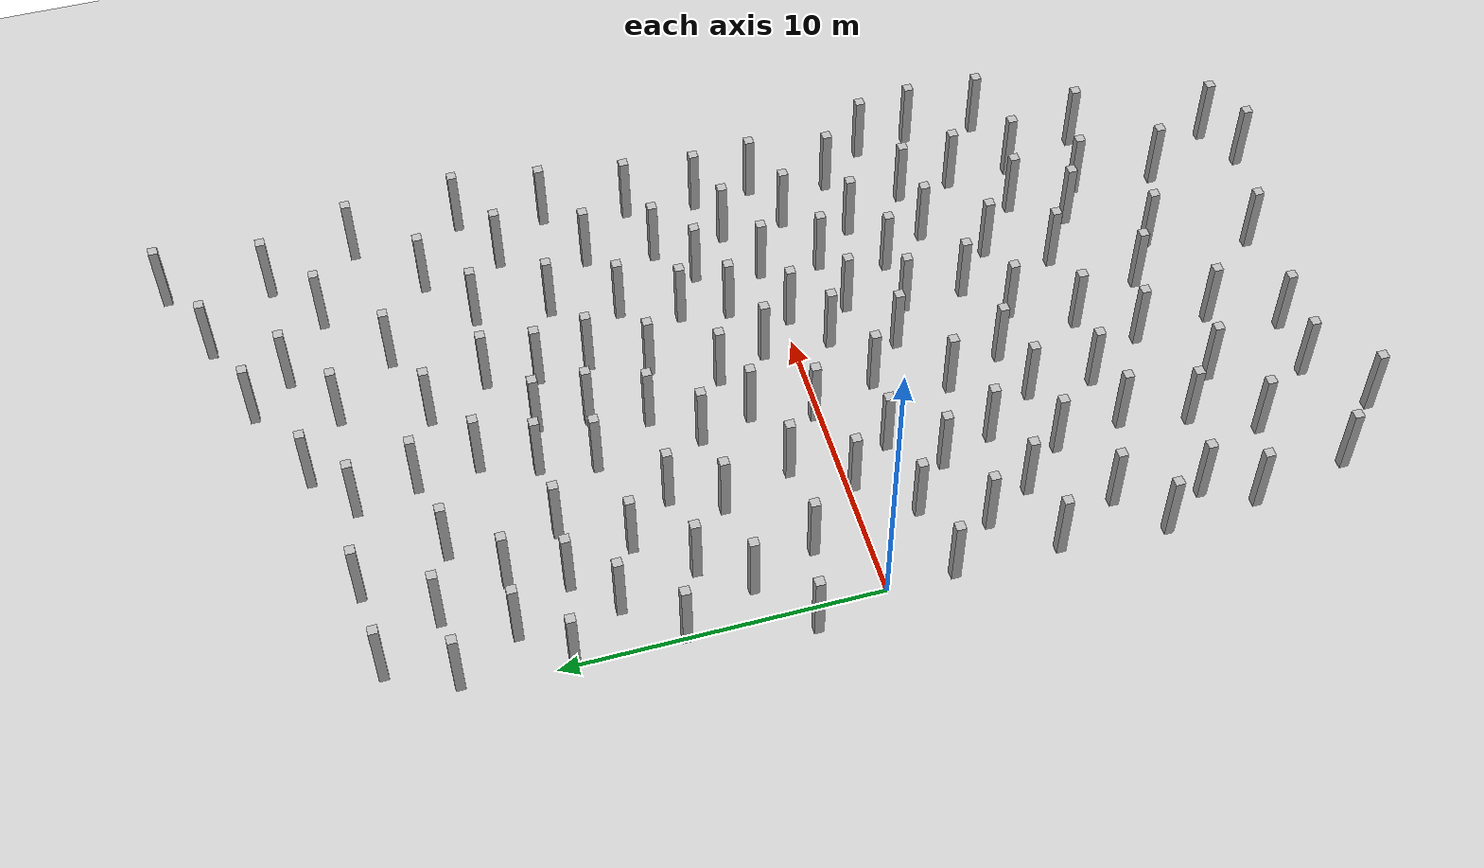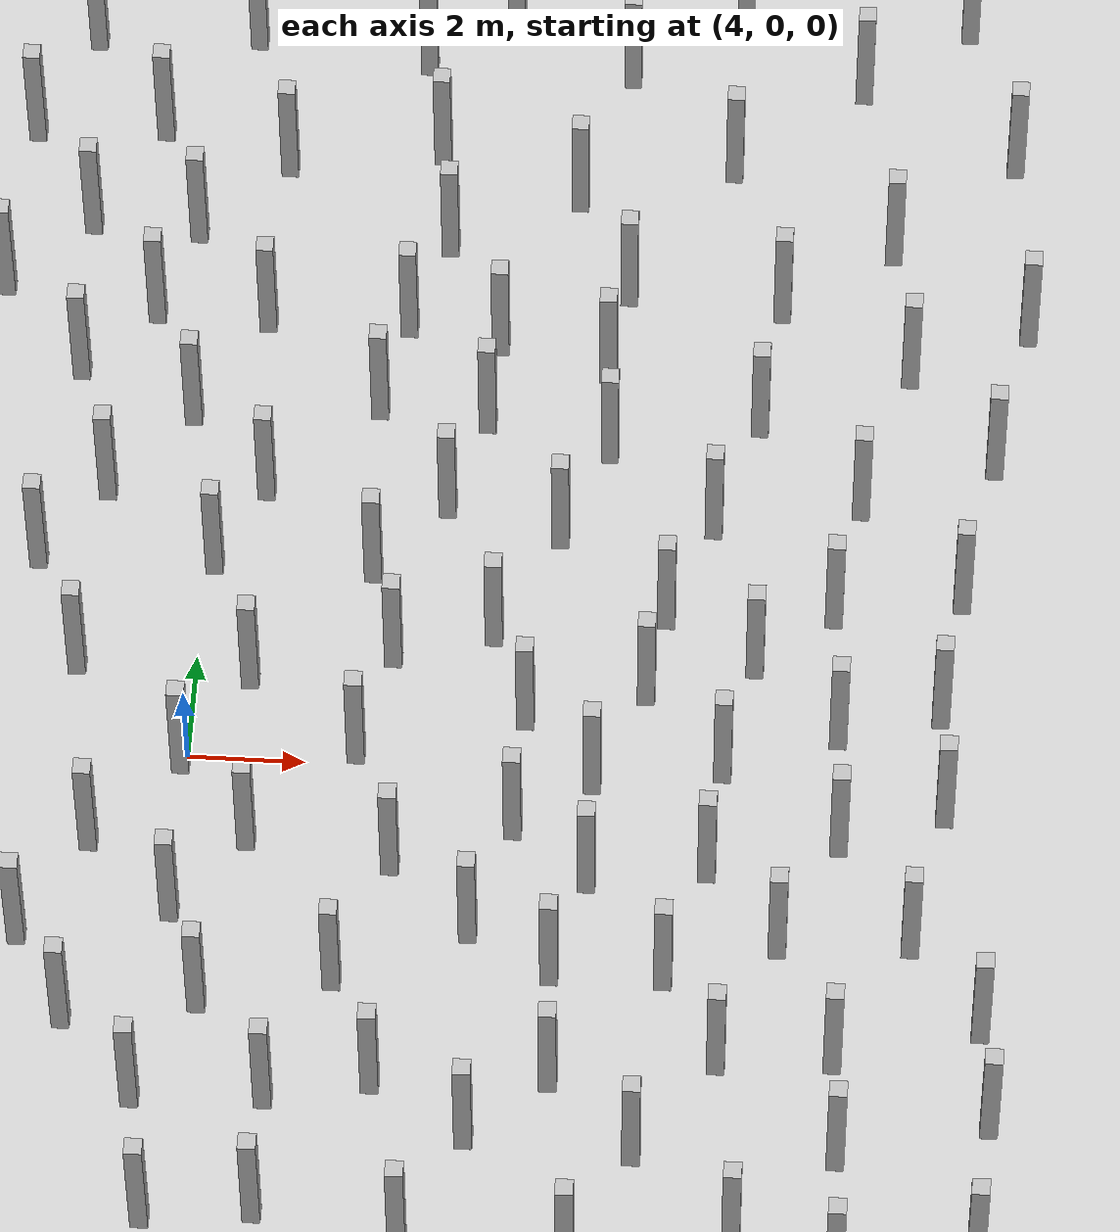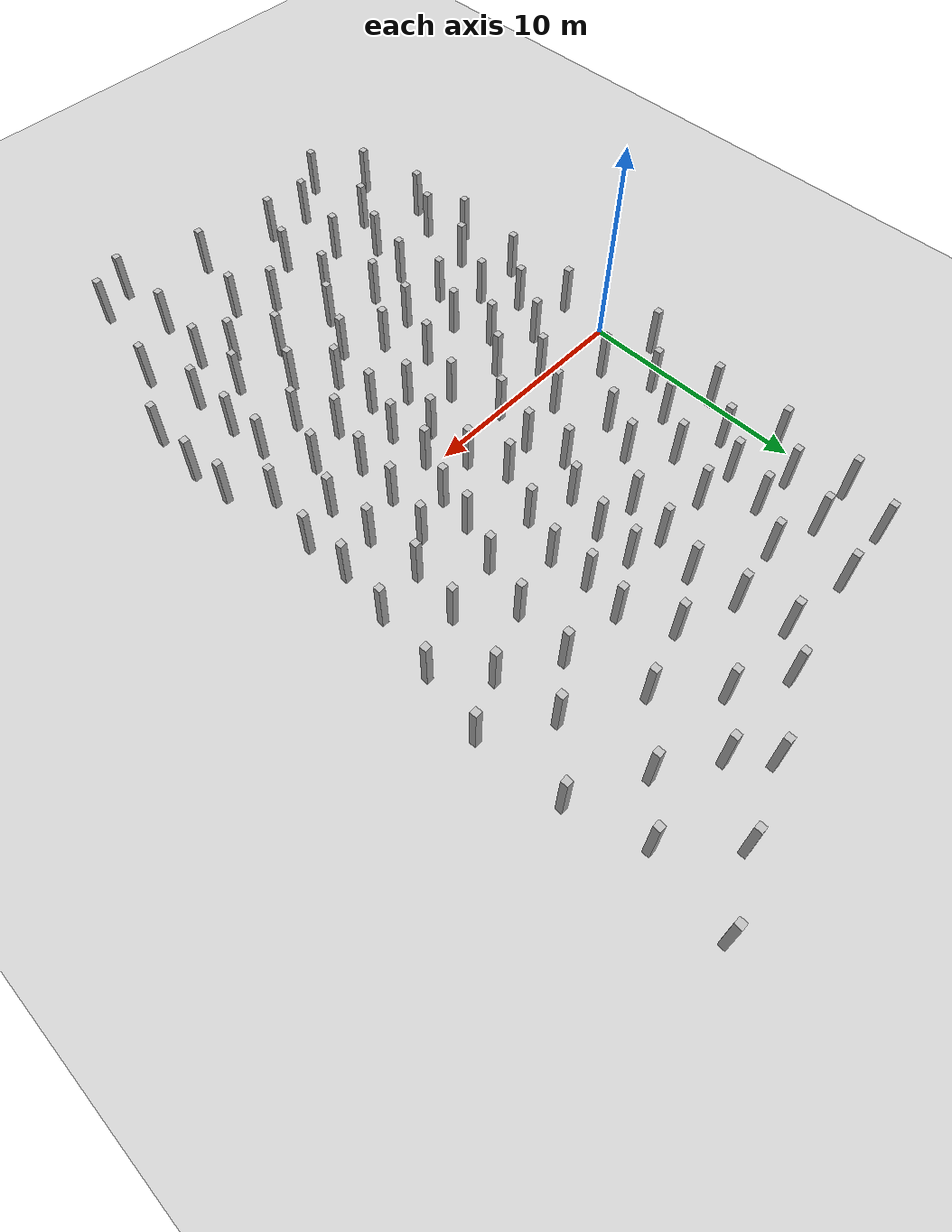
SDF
<sdf version="1.7">
 <world name="random_boxes_100x40_600">
  <model name="ground_plane">
   <static>1</static>
   <link name="link">
    <collision name="collision">
     <geometry><plane><normal>0 0 1</normal><size>100 100</size></plane></geometry>
     <surface><friction><ode><mu>100</mu><mu2>50</mu2></ode></friction></surface>
    </collision>
    <visual name="visual">
     <cast_shadows>0</cast_shadows>
     <geometry><plane><normal>0 0 1</normal><size>100 100</size></plane></geometry>
     <material>
      <script><uri>file://media/materials/scripts/gazebo.material</uri><name>Gazebo/Grey</name></script>
     </material>
    </visual>
   </link>
  </model>
  <model name="box_0">
   <static>1</static>
   <pose>17.4836 6.59513 1.25 0 -0 0</pose>
   <link name="link">
    <visual name="visual"><geometry><box><size>0.3 0.3 2.5</size></box></geometry></visual>
    <collision name="collision"><geometry><box><size>0.3 0.3 2.5</size></box></geometry></collision>
   </link>
  </model>
  <model name="box_2">
   <static>1</static>
   <pose>15.2072 5.61376 1.25 0 -0 0</pose>
   <link name="link">
    <visual name="visual"><geometry><box><size>0.3 0.3 2.5</size></box></geometry></visual>
    <collision name="collision"><geometry><box><size>0.3 0.3 2.5</size></box></geometry></collision>
   </link>
  </model>
  <model name="box_6">
   <static>1</static>
   <pose>15.948 8.4165 1.25 0 -0 0</pose>
   <link name="link">
    <visual name="visual"><geometry><box><size>0.3 0.3 2.5</size></box></geometry></visual>
    <collision name="collision"><geometry><box><size>0.3 0.3 2.5</size></box></geometry></collision>
   </link>
  </model>
  <model name="box_9">
   <static>1</static>
   <pose>17.9796 9.42606 1.25 0 -0 0</pose>
   <link name="link">
    <visual name="visual"><geometry><box><size>0.3 0.3 2.5</size></box></geometry></visual>
    <collision name="collision"><geometry><box><size>0.3 0.3 2.5</size></box></geometry></collision>
   </link>
  </model>
  <model name="box_10">
   <static>1</static>
   <pose>17.0221 3.80163 1.25 0 -0 0</pose>
   <link name="link">
    <visual name="visual"><geometry><box><size>0.3 0.3 2.5</size></box></geometry></visual>
    <collision name="collision"><geometry><box><size>0.3 0.3 2.5</size></box></geometry></collision>
   </link>
  </model>
  <model name="box_13">
   <static>1</static>
   <pose>13.3817 7.23787 1.25 0 -0 0</pose>
   <link name="link">
    <visual name="visual"><geometry><box><size>0.3 0.3 2.5</size></box></geometry></visual>
    <collision name="collision"><geometry><box><size>0.3 0.3 2.5</size></box></geometry></collision>
   </link>
  </model>
  <model name="box_15">
   <static>1</static>
   <pose>14.8376 3.37622 1.25 0 -0 0</pose>
   <link name="link">
    <visual name="visual"><geometry><box><size>0.3 0.3 2.5</size></box></geometry></visual>
    <collision name="collision"><geometry><box><size>0.3 0.3 2.5</size></box></geometry></collision>
   </link>
  </model>
  <model name="box_16">
   <static>1</static>
   <pose>15.5586 11.012 1.25 0 -0 0</pose>
   <link name="link">
    <visual name="visual"><geometry><box><size>0.3 0.3 2.5</size></box></geometry></visual>
    <collision name="collision"><geometry><box><size>0.3 0.3 2.5</size></box></geometry></collision>
   </link>
  </model>
  <model name="box_23">
   <static>1</static>
   <pose>16.73 15.923 1.25 0 -0 0</pose>
   <link name="link">
    <visual name="visual"><geometry><box><size>0.3 0.3 2.5</size></box></geometry></visual>
    <collision name="collision"><geometry><box><size>0.3 0.3 2.5</size></box></geometry></collision>
   </link>
  </model>
  <model name="box_25">
   <static>1</static>
   <pose>11.9703 3.1948 1.25 0 -0 0</pose>
   <link name="link">
    <visual name="visual"><geometry><box><size>0.3 0.3 2.5</size></box></geometry></visual>
    <collision name="collision"><geometry><box><size>0.3 0.3 2.5</size></box></geometry></collision>
   </link>
  </model>
  <model name="box_26">
   <static>1</static>
   <pose>13.6562 9.66763 1.25 0 -0 0</pose>
   <link name="link">
    <visual name="visual"><geometry><box><size>0.3 0.3 2.5</size></box></geometry></visual>
    <collision name="collision"><geometry><box><size>0.3 0.3 2.5</size></box></geometry></collision>
   </link>
  </model>
  <model name="box_27">
   <static>1</static>
   <pose>17.293 19.288 1.25 0 -0 0</pose>
   <link name="link">
    <visual name="visual"><geometry><box><size>0.3 0.3 2.5</size></box></geometry></visual>
    <collision name="collision"><geometry><box><size>0.3 0.3 2.5</size></box></geometry></collision>
   </link>
  </model>
  <model name="box_28">
   <static>1</static>
   <pose>9.04471 2.67448 1.25 0 -0 0</pose>
   <link name="link">
    <visual name="visual"><geometry><box><size>0.3 0.3 2.5</size></box></geometry></visual>
    <collision name="collision"><geometry><box><size>0.3 0.3 2.5</size></box></geometry></collision>
   </link>
  </model>
  <model name="box_29">
   <static>1</static>
   <pose>14.891 14.481 1.25 0 -0 0</pose>
   <link name="link">
    <visual name="visual"><geometry><box><size>0.3 0.3 2.5</size></box></geometry></visual>
    <collision name="collision"><geometry><box><size>0.3 0.3 2.5</size></box></geometry></collision>
   </link>
  </model>
  <model name="box_30">
   <static>1</static>
   <pose>12.6881 5.0803 1.25 0 -0 0</pose>
   <link name="link">
    <visual name="visual"><geometry><box><size>0.3 0.3 2.5</size></box></geometry></visual>
    <collision name="collision"><geometry><box><size>0.3 0.3 2.5</size></box></geometry></collision>
   </link>
  </model>
  <model name="box_33">
   <static>1</static>
   <pose>9.686 1.023 1.25 0 -0 0</pose>
   <link name="link">
    <visual name="visual"><geometry><box><size>0.3 0.3 2.5</size></box></geometry></visual>
    <collision name="collision"><geometry><box><size>0.3 0.3 2.5</size></box></geometry></collision>
   </link>
  </model>
  <model name="box_34">
   <static>1</static>
   <pose>7.356 2.145 1.25 0 -0 0</pose>
   <link name="link">
    <visual name="visual"><geometry><box><size>0.3 0.3 2.5</size></box></geometry></visual>
    <collision name="collision"><geometry><box><size>0.3 0.3 2.5</size></box></geometry></collision>
   </link>
  </model>
  <model name="box_35">
   <static>1</static>
   <pose>10.6857 8.21715 1.25 0 -0 0</pose>
   <link name="link">
    <visual name="visual"><geometry><box><size>0.3 0.3 2.5</size></box></geometry></visual>
    <collision name="collision"><geometry><box><size>0.3 0.3 2.5</size></box></geometry></collision>
   </link>
  </model>
  <model name="box_37">
   <static>1</static>
   <pose>4.947 1.573 1.25 0 -0 0</pose>
   <link name="link">
    <visual name="visual"><geometry><box><size>0.3 0.3 2.5</size></box></geometry></visual>
    <collision name="collision"><geometry><box><size>0.3 0.3 2.5</size></box></geometry></collision>
   </link>
  </model>
  <model name="box_41">
   <static>1</static>
   <pose>9.607 -1.17 1.25 0 -0 0</pose>
   <link name="link">
    <visual name="visual"><geometry><box><size>0.3 0.3 2.5</size></box></geometry></visual>
    <collision name="collision"><geometry><box><size>0.3 0.3 2.5</size></box></geometry></collision>
   </link>
  </model>
  <model name="box_43">
   <static>1</static>
   <pose>8.98318 -3.23147 1.25 0 -0 0</pose>
   <link name="link">
    <visual name="visual"><geometry><box><size>0.3 0.3 2.5</size></box></geometry></visual>
    <collision name="collision"><geometry><box><size>0.3 0.3 2.5</size></box></geometry></collision>
   </link>
  </model>
  <model name="box_44">
   <static>1</static>
   <pose>9.17179 -7.16814 1.25 0 -0 0</pose>
   <link name="link">
    <visual name="visual"><geometry><box><size>0.3 0.3 2.5</size></box></geometry></visual>
    <collision name="collision"><geometry><box><size>0.3 0.3 2.5</size></box></geometry></collision>
   </link>
  </model>
  <model name="box_45">
   <static>1</static>
   <pose>17.6378 13.02 1.25 0 -0 0</pose>
   <link name="link">
    <visual name="visual"><geometry><box><size>0.3 0.3 2.5</size></box></geometry></visual>
    <collision name="collision"><geometry><box><size>0.3 0.3 2.5</size></box></geometry></collision>
   </link>
  </model>
  <model name="box_47">
   <static>1</static>
   <pose>12.6696 12.6326 1.25 0 -0 0</pose>
   <link name="link">
    <visual name="visual"><geometry><box><size>0.3 0.3 2.5</size></box></geometry></visual>
    <collision name="collision"><geometry><box><size>0.3 0.3 2.5</size></box></geometry></collision>
   </link>
  </model>
  <model name="box_48">
   <static>1</static>
   <pose>6.85599 0.180495 1.25 0 -0 0</pose>
   <link name="link">
    <visual name="visual"><geometry><box><size>0.3 0.3 2.5</size></box></geometry></visual>
    <collision name="collision"><geometry><box><size>0.3 0.3 2.5</size></box></geometry></collision>
   </link>
  </model>
  <model name="box_51">
   <static>1</static>
   <pose>15.1182 -1.18065 1.25 0 -0 0</pose>
   <link name="link">
    <visual name="visual"><geometry><box><size>0.3 0.3 2.5</size></box></geometry></visual>
    <collision name="collision"><geometry><box><size>0.3 0.3 2.5</size></box></geometry></collision>
   </link>
  </model>
  <model name="box_52">
   <static>1</static>
   <pose>14.612 18.134 1.25 0 -0 0</pose>
   <link name="link">
    <visual name="visual"><geometry><box><size>0.3 0.3 2.5</size></box></geometry></visual>
    <collision name="collision"><geometry><box><size>0.3 0.3 2.5</size></box></geometry></collision>
   </link>
  </model>
  <model name="box_55">
   <static>1</static>
   <pose>7.58574 -1.98708 1.25 0 -0 0</pose>
   <link name="link">
    <visual name="visual"><geometry><box><size>0.3 0.3 2.5</size></box></geometry></visual>
    <collision name="collision"><geometry><box><size>0.3 0.3 2.5</size></box></geometry></collision>
   </link>
  </model>
  <model name="box_57">
   <static>1</static>
   <pose>8.77159 8.68753 1.25 0 -0 0</pose>
   <link name="link">
    <visual name="visual"><geometry><box><size>0.3 0.3 2.5</size></box></geometry></visual>
    <collision name="collision"><geometry><box><size>0.3 0.3 2.5</size></box></geometry></collision>
   </link>
  </model>
  <model name="box_58">
   <static>1</static>
   <pose>6.88706 3.84569 1.25 0 -0 0</pose>
   <link name="link">
    <visual name="visual"><geometry><box><size>0.3 0.3 2.5</size></box></geometry></visual>
    <collision name="collision"><geometry><box><size>0.3 0.3 2.5</size></box></geometry></collision>
   </link>
  </model>
  <model name="box_59">
   <static>1</static>
   <pose>13.5333 2.28479 1.25 0 -0 0</pose>
   <link name="link">
    <visual name="visual"><geometry><box><size>0.3 0.3 2.5</size></box></geometry></visual>
    <collision name="collision"><geometry><box><size>0.3 0.3 2.5</size></box></geometry></collision>
   </link>
  </model>
  <model name="box_60">
   <static>1</static>
   <pose>10.0602 4.73044 1.25 0 -0 0</pose>
   <link name="link">
    <visual name="visual"><geometry><box><size>0.3 0.3 2.5</size></box></geometry></visual>
    <collision name="collision"><geometry><box><size>0.3 0.3 2.5</size></box></geometry></collision>
   </link>
  </model>
  <model name="box_61">
   <static>1</static>
   <pose>11.6059 17.1727 1.25 0 -0 0</pose>
   <link name="link">
    <visual name="visual"><geometry><box><size>0.3 0.3 2.5</size></box></geometry></visual>
    <collision name="collision"><geometry><box><size>0.3 0.3 2.5</size></box></geometry></collision>
   </link>
  </model>
  <model name="box_62">
   <static>1</static>
   <pose>10.9113 -2.13782 1.25 0 -0 0</pose>
   <link name="link">
    <visual name="visual"><geometry><box><size>0.3 0.3 2.5</size></box></geometry></visual>
    <collision name="collision"><geometry><box><size>0.3 0.3 2.5</size></box></geometry></collision>
   </link>
  </model>
  <model name="box_63">
   <static>1</static>
   <pose>12.2999 -3.95113 1.25 0 -0 0</pose>
   <link name="link">
    <visual name="visual"><geometry><box><size>0.3 0.3 2.5</size></box></geometry></visual>
    <collision name="collision"><geometry><box><size>0.3 0.3 2.5</size></box></geometry></collision>
   </link>
  </model>
  <model name="box_64">
   <static>1</static>
   <pose>10.4993 -6.00847 1.25 0 -0 0</pose>
   <link name="link">
    <visual name="visual"><geometry><box><size>0.3 0.3 2.5</size></box></geometry></visual>
    <collision name="collision"><geometry><box><size>0.3 0.3 2.5</size></box></geometry></collision>
   </link>
  </model>
  <model name="box_65">
   <static>1</static>
   <pose>12.9216 -1.81684 1.25 0 -0 0</pose>
   <link name="link">
    <visual name="visual"><geometry><box><size>0.3 0.3 2.5</size></box></geometry></visual>
    <collision name="collision"><geometry><box><size>0.3 0.3 2.5</size></box></geometry></collision>
   </link>
  </model>
  <model name="box_66">
   <static>1</static>
   <pose>1.96698 1.6933 1.25 0 -0 0</pose>
   <link name="link">
    <visual name="visual"><geometry><box><size>0.3 0.3 2.5</size></box></geometry></visual>
    <collision name="collision"><geometry><box><size>0.3 0.3 2.5</size></box></geometry></collision>
   </link>
  </model>
  <model name="box_67">
   <static>1</static>
   <pose>12.713 15.901 1.25 0 -0 0</pose>
   <link name="link">
    <visual name="visual"><geometry><box><size>0.3 0.3 2.5</size></box></geometry></visual>
    <collision name="collision"><geometry><box><size>0.3 0.3 2.5</size></box></geometry></collision>
   </link>
  </model>
  <model name="box_68">
   <static>1</static>
   <pose>8.65293 7.04466 1.25 0 -0 0</pose>
   <link name="link">
    <visual name="visual"><geometry><box><size>0.3 0.3 2.5</size></box></geometry></visual>
    <collision name="collision"><geometry><box><size>0.3 0.3 2.5</size></box></geometry></collision>
   </link>
  </model>
  <model name="box_70">
   <static>1</static>
   <pose>8.61097 15.8419 1.25 0 -0 0</pose>
   <link name="link">
    <visual name="visual"><geometry><box><size>0.3 0.3 2.5</size></box></geometry></visual>
    <collision name="collision"><geometry><box><size>0.3 0.3 2.5</size></box></geometry></collision>
   </link>
  </model>
  <model name="box_71">
   <static>1</static>
   <pose>7.55234 -6.21545 1.25 0 -0 0</pose>
   <link name="link">
    <visual name="visual"><geometry><box><size>0.3 0.3 2.5</size></box></geometry></visual>
    <collision name="collision"><geometry><box><size>0.3 0.3 2.5</size></box></geometry></collision>
   </link>
  </model>
  <model name="box_72">
   <static>1</static>
   <pose>4.03977 15.0454 1.25 0 -0 0</pose>
   <link name="link">
    <visual name="visual"><geometry><box><size>0.3 0.3 2.5</size></box></geometry></visual>
    <collision name="collision"><geometry><box><size>0.3 0.3 2.5</size></box></geometry></collision>
   </link>
  </model>
  <model name="box_74">
   <static>1</static>
   <pose>8.07681 5.24452 1.25 0 -0 0</pose>
   <link name="link">
    <visual name="visual"><geometry><box><size>0.3 0.3 2.5</size></box></geometry></visual>
    <collision name="collision"><geometry><box><size>0.3 0.3 2.5</size></box></geometry></collision>
   </link>
  </model>
  <model name="box_75">
   <static>1</static>
   <pose>4.92264 5.42633 1.25 0 -0 0</pose>
   <link name="link">
    <visual name="visual"><geometry><box><size>0.3 0.3 2.5</size></box></geometry></visual>
    <collision name="collision"><geometry><box><size>0.3 0.3 2.5</size></box></geometry></collision>
   </link>
  </model>
  <model name="box_76">
   <static>1</static>
   <pose>13.0873 0.162636 1.25 0 -0 0</pose>
   <link name="link">
    <visual name="visual"><geometry><box><size>0.3 0.3 2.5</size></box></geometry></visual>
    <collision name="collision"><geometry><box><size>0.3 0.3 2.5</size></box></geometry></collision>
   </link>
  </model>
  <model name="box_78">
   <static>1</static>
   <pose>10.8915 -0.190176 1.25 0 -0 0</pose>
   <link name="link">
    <visual name="visual"><geometry><box><size>0.3 0.3 2.5</size></box></geometry></visual>
    <collision name="collision"><geometry><box><size>0.3 0.3 2.5</size></box></geometry></collision>
   </link>
  </model>
  <model name="box_79">
   <static>1</static>
   <pose>11.712 1.638 1.25 0 -0 0</pose>
   <link name="link">
    <visual name="visual"><geometry><box><size>0.3 0.3 2.5</size></box></geometry></visual>
    <collision name="collision"><geometry><box><size>0.3 0.3 2.5</size></box></geometry></collision>
   </link>
  </model>
  <model name="box_80">
   <static>1</static>
   <pose>4.14774 3.8578 1.25 0 -0 0</pose>
   <link name="link">
    <visual name="visual"><geometry><box><size>0.3 0.3 2.5</size></box></geometry></visual>
    <collision name="collision"><geometry><box><size>0.3 0.3 2.5</size></box></geometry></collision>
   </link>
  </model>
  <model name="box_82">
   <static>1</static>
   <pose>5.80402 -6.60036 1.25 0 -0 0</pose>
   <link name="link">
    <visual name="visual"><geometry><box><size>0.3 0.3 2.5</size></box></geometry></visual>
    <collision name="collision"><geometry><box><size>0.3 0.3 2.5</size></box></geometry></collision>
   </link>
  </model>
  <model name="box_83">
   <static>1</static>
   <pose>6.77163 -4.2783 1.25 0 -0 0</pose>
   <link name="link">
    <visual name="visual"><geometry><box><size>0.3 0.3 2.5</size></box></geometry></visual>
    <collision name="collision"><geometry><box><size>0.3 0.3 2.5</size></box></geometry></collision>
   </link>
  </model>
  <model name="box_85">
   <static>1</static>
   <pose>7.1208 14.663 1.25 0 -0 0</pose>
   <link name="link">
    <visual name="visual"><geometry><box><size>0.3 0.3 2.5</size></box></geometry></visual>
    <collision name="collision"><geometry><box><size>0.3 0.3 2.5</size></box></geometry></collision>
   </link>
  </model>
  <model name="box_86">
   <static>1</static>
   <pose>5.78945 -8.75363 1.25 0 -0 0</pose>
   <link name="link">
    <visual name="visual"><geometry><box><size>0.3 0.3 2.5</size></box></geometry></visual>
    <collision name="collision"><geometry><box><size>0.3 0.3 2.5</size></box></geometry></collision>
   </link>
  </model>
  <model name="box_87">
   <static>1</static>
   <pose>11.9571 -7.32286 1.25 0 -0 0</pose>
   <link name="link">
    <visual name="visual"><geometry><box><size>0.3 0.3 2.5</size></box></geometry></visual>
    <collision name="collision"><geometry><box><size>0.3 0.3 2.5</size></box></geometry></collision>
   </link>
  </model>
  <model name="box_88">
   <static>1</static>
   <pose>15.323 -7.21574 1.25 0 -0 0</pose>
   <link name="link">
    <visual name="visual"><geometry><box><size>0.3 0.3 2.5</size></box></geometry></visual>
    <collision name="collision"><geometry><box><size>0.3 0.3 2.5</size></box></geometry></collision>
   </link>
  </model>
  <model name="box_92">
   <static>1</static>
   <pose>10.9579 9.86808 1.25 0 -0 0</pose>
   <link name="link">
    <visual name="visual"><geometry><box><size>0.3 0.3 2.5</size></box></geometry></visual>
    <collision name="collision"><geometry><box><size>0.3 0.3 2.5</size></box></geometry></collision>
   </link>
  </model>
  <model name="box_95">
   <static>1</static>
   <pose>3.59462 -6.70837 1.25 0 -0 0</pose>
   <link name="link">
    <visual name="visual"><geometry><box><size>0.3 0.3 2.5</size></box></geometry></visual>
    <collision name="collision"><geometry><box><size>0.3 0.3 2.5</size></box></geometry></collision>
   </link>
  </model>
  <model name="box_98">
   <static>1</static>
   <pose>4.97922 -12.4046 1.25 0 -0 0</pose>
   <link name="link">
    <visual name="visual"><geometry><box><size>0.3 0.3 2.5</size></box></geometry></visual>
    <collision name="collision"><geometry><box><size>0.3 0.3 2.5</size></box></geometry></collision>
   </link>
  </model>
  <model name="box_99">
   <static>1</static>
   <pose>7.15414 8.98177 1.25 0 -0 0</pose>
   <link name="link">
    <visual name="visual"><geometry><box><size>0.3 0.3 2.5</size></box></geometry></visual>
    <collision name="collision"><geometry><box><size>0.3 0.3 2.5</size></box></geometry></collision>
   </link>
  </model>
  <model name="box_101">
   <static>1</static>
   <pose>2.54893 -13.0805 1.25 0 -0 0</pose>
   <link name="link">
    <visual name="visual"><geometry><box><size>0.3 0.3 2.5</size></box></geometry></visual>
    <collision name="collision"><geometry><box><size>0.3 0.3 2.5</size></box></geometry></collision>
   </link>
  </model>
  <model name="box_103">
   <static>1</static>
   <pose>13.6799 -8.82067 1.25 0 -0 0</pose>
   <link name="link">
    <visual name="visual"><geometry><box><size>0.3 0.3 2.5</size></box></geometry></visual>
    <collision name="collision"><geometry><box><size>0.3 0.3 2.5</size></box></geometry></collision>
   </link>
  </model>
  <model name="box_105">
   <static>1</static>
   <pose>0.772567 -10.341 1.25 0 -0 0</pose>
   <link name="link">
    <visual name="visual"><geometry><box><size>0.3 0.3 2.5</size></box></geometry></visual>
    <collision name="collision"><geometry><box><size>0.3 0.3 2.5</size></box></geometry></collision>
   </link>
  </model>
  <model name="box_106">
   <static>1</static>
   <pose>8.20837 -9.11857 1.25 0 -0 0</pose>
   <link name="link">
    <visual name="visual"><geometry><box><size>0.3 0.3 2.5</size></box></geometry></visual>
    <collision name="collision"><geometry><box><size>0.3 0.3 2.5</size></box></geometry></collision>
   </link>
  </model>
  <model name="box_108">
   <static>1</static>
   <pose>-0.234938 -8.85022 1.25 0 -0 0</pose>
   <link name="link">
    <visual name="visual"><geometry><box><size>0.3 0.3 2.5</size></box></geometry></visual>
    <collision name="collision"><geometry><box><size>0.3 0.3 2.5</size></box></geometry></collision>
   </link>
  </model>
  <model name="box_110">
   <static>1</static>
   <pose>7.75685 10.7393 1.25 0 -0 0</pose>
   <link name="link">
    <visual name="visual"><geometry><box><size>0.3 0.3 2.5</size></box></geometry></visual>
    <collision name="collision"><geometry><box><size>0.3 0.3 2.5</size></box></geometry></collision>
   </link>
  </model>
  <model name="box_111">
   <static>1</static>
   <pose>3.95259 -3.10227 1.25 0 -0 0</pose>
   <link name="link">
    <visual name="visual"><geometry><box><size>0.3 0.3 2.5</size></box></geometry></visual>
    <collision name="collision"><geometry><box><size>0.3 0.3 2.5</size></box></geometry></collision>
   </link>
  </model>
  <model name="box_114">
   <static>1</static>
   <pose>7.49214 12.714 1.25 0 -0 0</pose>
   <link name="link">
    <visual name="visual"><geometry><box><size>0.3 0.3 2.5</size></box></geometry></visual>
    <collision name="collision"><geometry><box><size>0.3 0.3 2.5</size></box></geometry></collision>
   </link>
  </model>
  <model name="box_115">
   <static>1</static>
   <pose>14.1754 -3.22872 1.25 0 -0 0</pose>
   <link name="link">
    <visual name="visual"><geometry><box><size>0.3 0.3 2.5</size></box></geometry></visual>
    <collision name="collision"><geometry><box><size>0.3 0.3 2.5</size></box></geometry></collision>
   </link>
  </model>
  <model name="box_116">
   <static>1</static>
   <pose>10.9773 -9.29721 1.25 0 -0 0</pose>
   <link name="link">
    <visual name="visual"><geometry><box><size>0.3 0.3 2.5</size></box></geometry></visual>
    <collision name="collision"><geometry><box><size>0.3 0.3 2.5</size></box></geometry></collision>
   </link>
  </model>
  <model name="box_117">
   <static>1</static>
   <pose>4.55402 -4.83846 1.25 0 -0 0</pose>
   <link name="link">
    <visual name="visual"><geometry><box><size>0.3 0.3 2.5</size></box></geometry></visual>
    <collision name="collision"><geometry><box><size>0.3 0.3 2.5</size></box></geometry></collision>
   </link>
  </model>
  <model name="box_120">
   <static>1</static>
   <pose>4.35086 -15.3913 1.25 0 -0 0</pose>
   <link name="link">
    <visual name="visual"><geometry><box><size>0.3 0.3 2.5</size></box></geometry></visual>
    <collision name="collision"><geometry><box><size>0.3 0.3 2.5</size></box></geometry></collision>
   </link>
  </model>
  <model name="box_121">
   <static>1</static>
   <pose>16.7444 1.4654 1.25 0 -0 0</pose>
   <link name="link">
    <visual name="visual"><geometry><box><size>0.3 0.3 2.5</size></box></geometry></visual>
    <collision name="collision"><geometry><box><size>0.3 0.3 2.5</size></box></geometry></collision>
   </link>
  </model>
  <model name="box_122">
   <static>1</static>
   <pose>5.12973 -1.6381 1.25 0 -0 0</pose>
   <link name="link">
    <visual name="visual"><geometry><box><size>0.3 0.3 2.5</size></box></geometry></visual>
    <collision name="collision"><geometry><box><size>0.3 0.3 2.5</size></box></geometry></collision>
   </link>
  </model>
  <model name="box_123">
   <static>1</static>
   <pose>16.3994 -3.09196 1.25 0 -0 0</pose>
   <link name="link">
    <visual name="visual"><geometry><box><size>0.3 0.3 2.5</size></box></geometry></visual>
    <collision name="collision"><geometry><box><size>0.3 0.3 2.5</size></box></geometry></collision>
   </link>
  </model>
  <model name="box_125">
   <static>1</static>
   <pose>6.3342 -15.516 1.25 0 -0 0</pose>
   <link name="link">
    <visual name="visual"><geometry><box><size>0.3 0.3 2.5</size></box></geometry></visual>
    <collision name="collision"><geometry><box><size>0.3 0.3 2.5</size></box></geometry></collision>
   </link>
  </model>
  <model name="box_127">
   <static>1</static>
   <pose>1.42994 -3.69903 1.25 0 -0 0</pose>
   <link name="link">
    <visual name="visual"><geometry><box><size>0.3 0.3 2.5</size></box></geometry></visual>
    <collision name="collision"><geometry><box><size>0.3 0.3 2.5</size></box></geometry></collision>
   </link>
  </model>
  <model name="box_128">
   <static>1</static>
   <pose>13.9083 -11.2544 1.25 0 -0 0</pose>
   <link name="link">
    <visual name="visual"><geometry><box><size>0.3 0.3 2.5</size></box></geometry></visual>
    <collision name="collision"><geometry><box><size>0.3 0.3 2.5</size></box></geometry></collision>
   </link>
  </model>
  <model name="box_130">
   <static>1</static>
   <pose>3.53702 6.90962 1.25 0 -0 0</pose>
   <link name="link">
    <visual name="visual"><geometry><box><size>0.3 0.3 2.5</size></box></geometry></visual>
    <collision name="collision"><geometry><box><size>0.3 0.3 2.5</size></box></geometry></collision>
   </link>
  </model>
  <model name="box_131">
   <static>1</static>
   <pose>1.17883 14.8707 1.25 0 -0 0</pose>
   <link name="link">
    <visual name="visual"><geometry><box><size>0.3 0.3 2.5</size></box></geometry></visual>
    <collision name="collision"><geometry><box><size>0.3 0.3 2.5</size></box></geometry></collision>
   </link>
  </model>
  <model name="box_134">
   <static>1</static>
   <pose>4.67958 8.94252 1.25 0 -0 0</pose>
   <link name="link">
    <visual name="visual"><geometry><box><size>0.3 0.3 2.5</size></box></geometry></visual>
    <collision name="collision"><geometry><box><size>0.3 0.3 2.5</size></box></geometry></collision>
   </link>
  </model>
  <model name="box_135">
   <static>1</static>
   <pose>10.859 -12.6828 1.25 0 -0 0</pose>
   <link name="link">
    <visual name="visual"><geometry><box><size>0.3 0.3 2.5</size></box></geometry></visual>
    <collision name="collision"><geometry><box><size>0.3 0.3 2.5</size></box></geometry></collision>
   </link>
  </model>
  <model name="box_136">
   <static>1</static>
   <pose>2.18262 5.27552 1.25 0 -0 0</pose>
   <link name="link">
    <visual name="visual"><geometry><box><size>0.3 0.3 2.5</size></box></geometry></visual>
    <collision name="collision"><geometry><box><size>0.3 0.3 2.5</size></box></geometry></collision>
   </link>
  </model>
  <model name="box_137">
   <static>1</static>
   <pose>0.036 6.131 1.25 0 -0 0</pose>
   <link name="link">
    <visual name="visual"><geometry><box><size>0.3 0.3 2.5</size></box></geometry></visual>
    <collision name="collision"><geometry><box><size>0.3 0.3 2.5</size></box></geometry></collision>
   </link>
  </model>
  <model name="box_138">
   <static>1</static>
   <pose>7.03525 -10.7883 1.25 0 -0 0</pose>
   <link name="link">
    <visual name="visual"><geometry><box><size>0.3 0.3 2.5</size></box></geometry></visual>
    <collision name="collision"><geometry><box><size>0.3 0.3 2.5</size></box></geometry></collision>
   </link>
  </model>
  <model name="box_141">
   <static>1</static>
   <pose>1.20228 -7.63649 1.25 0 -0 0</pose>
   <link name="link">
    <visual name="visual"><geometry><box><size>0.3 0.3 2.5</size></box></geometry></visual>
    <collision name="collision"><geometry><box><size>0.3 0.3 2.5</size></box></geometry></collision>
   </link>
  </model>
  <model name="box_143">
   <static>1</static>
   <pose>13.2619 -5.51771 1.25 0 -0 0</pose>
   <link name="link">
    <visual name="visual"><geometry><box><size>0.3 0.3 2.5</size></box></geometry></visual>
    <collision name="collision"><geometry><box><size>0.3 0.3 2.5</size></box></geometry></collision>
   </link>
  </model>
  <model name="box_144">
   <static>1</static>
   <pose>0.024 -5.466 1.25 0 -0 0</pose>
   <link name="link">
    <visual name="visual"><geometry><box><size>0.3 0.3 2.5</size></box></geometry></visual>
    <collision name="collision"><geometry><box><size>0.3 0.3 2.5</size></box></geometry></collision>
   </link>
  </model>
  <model name="box_147">
   <static>1</static>
   <pose>9.98382 11.8423 1.25 0 -0 0</pose>
   <link name="link">
    <visual name="visual"><geometry><box><size>0.3 0.3 2.5</size></box></geometry></visual>
    <collision name="collision"><geometry><box><size>0.3 0.3 2.5</size></box></geometry></collision>
   </link>
  </model>
  <model name="box_148">
   <static>1</static>
   <pose>-0.004088 -11.8575 1.25 0 -0 0</pose>
   <link name="link">
    <visual name="visual"><geometry><box><size>0.3 0.3 2.5</size></box></geometry></visual>
    <collision name="collision"><geometry><box><size>0.3 0.3 2.5</size></box></geometry></collision>
   </link>
  </model>
  <model name="box_149">
   <static>1</static>
   <pose>3.49011 -11.1123 1.25 0 -0 0</pose>
   <link name="link">
    <visual name="visual"><geometry><box><size>0.3 0.3 2.5</size></box></geometry></visual>
    <collision name="collision"><geometry><box><size>0.3 0.3 2.5</size></box></geometry></collision>
   </link>
  </model>
  <model name="box_151">
   <static>1</static>
   <pose>9.31775 -11.675 1.25 0 -0 0</pose>
   <link name="link">
    <visual name="visual"><geometry><box><size>0.3 0.3 2.5</size></box></geometry></visual>
    <collision name="collision"><geometry><box><size>0.3 0.3 2.5</size></box></geometry></collision>
   </link>
  </model>
  <model name="box_155">
   <static>1</static>
   <pose>10.8082 6.54585 1.25 0 -0 0</pose>
   <link name="link">
    <visual name="visual"><geometry><box><size>0.3 0.3 2.5</size></box></geometry></visual>
    <collision name="collision"><geometry><box><size>0.3 0.3 2.5</size></box></geometry></collision>
   </link>
  </model>
  <model name="box_158">
   <static>1</static>
   <pose>0.012463 -2.11633 1.25 0 -0 0</pose>
   <link name="link">
    <visual name="visual"><geometry><box><size>0.3 0.3 2.5</size></box></geometry></visual>
    <collision name="collision"><geometry><box><size>0.3 0.3 2.5</size></box></geometry></collision>
   </link>
  </model>
  <model name="box_164">
   <static>1</static>
   <pose>13.647 -17.234 1.25 0 -0 0</pose>
   <link name="link">
    <visual name="visual"><geometry><box><size>0.3 0.3 2.5</size></box></geometry></visual>
    <collision name="collision"><geometry><box><size>0.3 0.3 2.5</size></box></geometry></collision>
   </link>
  </model>
  <model name="box_165">
   <static>1</static>
   <pose>3.31098 10.7809 1.25 0 -0 0</pose>
   <link name="link">
    <visual name="visual"><geometry><box><size>0.3 0.3 2.5</size></box></geometry></visual>
    <collision name="collision"><geometry><box><size>0.3 0.3 2.5</size></box></geometry></collision>
   </link>
  </model>
  <model name="box_166">
   <static>1</static>
   <pose>3.9562 -8.95742 1.25 0 -0 0</pose>
   <link name="link">
    <visual name="visual"><geometry><box><size>0.3 0.3 2.5</size></box></geometry></visual>
    <collision name="collision"><geometry><box><size>0.3 0.3 2.5</size></box></geometry></collision>
   </link>
  </model>
  <model name="box_168">
   <static>1</static>
   <pose>16.8791 -0.502362 1.25 0 -0 0</pose>
   <link name="link">
    <visual name="visual"><geometry><box><size>0.3 0.3 2.5</size></box></geometry></visual>
    <collision name="collision"><geometry><box><size>0.3 0.3 2.5</size></box></geometry></collision>
   </link>
  </model>
  <model name="box_171">
   <static>1</static>
   <pose>1.113 3.802 1.25 0 -0 0</pose>
   <link name="link">
    <visual name="visual"><geometry><box><size>0.3 0.3 2.5</size></box></geometry></visual>
    <collision name="collision"><geometry><box><size>0.3 0.3 2.5</size></box></geometry></collision>
   </link>
  </model>
  <model name="box_172">
   <static>1</static>
   <pose>4.80012 12.2983 1.25 0 -0 0</pose>
   <link name="link">
    <visual name="visual"><geometry><box><size>0.3 0.3 2.5</size></box></geometry></visual>
    <collision name="collision"><geometry><box><size>0.3 0.3 2.5</size></box></geometry></collision>
   </link>
  </model>
  <model name="box_173">
   <static>1</static>
   <pose>1.43729 10.8589 1.25 0 -0 0</pose>
   <link name="link">
    <visual name="visual"><geometry><box><size>0.3 0.3 2.5</size></box></geometry></visual>
    <collision name="collision"><geometry><box><size>0.3 0.3 2.5</size></box></geometry></collision>
   </link>
  </model>
  <model name="box_180">
   <static>1</static>
   <pose>12.6441 -10.4706 1.25 0 -0 0</pose>
   <link name="link">
    <visual name="visual"><geometry><box><size>0.3 0.3 2.5</size></box></geometry></visual>
    <collision name="collision"><geometry><box><size>0.3 0.3 2.5</size></box></geometry></collision>
   </link>
  </model>
  <model name="box_184">
   <static>1</static>
   <pose>13.6541 -14.0474 1.25 0 -0 0</pose>
   <link name="link">
    <visual name="visual"><geometry><box><size>0.3 0.3 2.5</size></box></geometry></visual>
    <collision name="collision"><geometry><box><size>0.3 0.3 2.5</size></box></geometry></collision>
   </link>
  </model>
  <model name="box_186">
   <static>1</static>
   <pose>3.89718 -0.191439 1.25 0 -0 0</pose>
   <link name="link">
    <visual name="visual"><geometry><box><size>0.3 0.3 2.5</size></box></geometry></visual>
    <collision name="collision"><geometry><box><size>0.3 0.3 2.5</size></box></geometry></collision>
   </link>
  </model>
  <model name="box_189">
   <static>1</static>
   <pose>17.6297 -4.6571 1.25 0 -0 0</pose>
   <link name="link">
    <visual name="visual"><geometry><box><size>0.3 0.3 2.5</size></box></geometry></visual>
    <collision name="collision"><geometry><box><size>0.3 0.3 2.5</size></box></geometry></collision>
   </link>
  </model>
  <model name="box_190">
   <static>1</static>
   <pose>2.512 -16.816 1.25 0 -0 0</pose>
   <link name="link">
    <visual name="visual"><geometry><box><size>0.3 0.3 2.5</size></box></geometry></visual>
    <collision name="collision"><geometry><box><size>0.3 0.3 2.5</size></box></geometry></collision>
   </link>
  </model>
  <model name="box_197">
   <static>1</static>
   <pose>15.4056 -9.37925 1.25 0 -0 0</pose>
   <link name="link">
    <visual name="visual"><geometry><box><size>0.3 0.3 2.5</size></box></geometry></visual>
    <collision name="collision"><geometry><box><size>0.3 0.3 2.5</size></box></geometry></collision>
   </link>
  </model>
  <model name="box_201">
   <static>1</static>
   <pose>10.3946 -3.96897 1.25 0 -0 0</pose>
   <link name="link">
    <visual name="visual"><geometry><box><size>0.3 0.3 2.5</size></box></geometry></visual>
    <collision name="collision"><geometry><box><size>0.3 0.3 2.5</size></box></geometry></collision>
   </link>
  </model>
  <model name="box_202">
   <static>1</static>
   <pose>1.50407 7.75672 1.25 0 -0 0</pose>
   <link name="link">
    <visual name="visual"><geometry><box><size>0.3 0.3 2.5</size></box></geometry></visual>
    <collision name="collision"><geometry><box><size>0.3 0.3 2.5</size></box></geometry></collision>
   </link>
  </model>
  <model name="box_220">
   <static>1</static>
   <pose>-0.701716 2.36653 1.25 0 -0 0</pose>
   <link name="link">
    <visual name="visual"><geometry><box><size>0.3 0.3 2.5</size></box></geometry></visual>
    <collision name="collision"><geometry><box><size>0.3 0.3 2.5</size></box></geometry></collision>
   </link>
  </model>
  <model name="box_240">
   <static>1</static>
   <pose>17.7059 -8.89115 1.25 0 -0 0</pose>
   <link name="link">
    <visual name="visual"><geometry><box><size>0.3 0.3 2.5</size></box></geometry></visual>
    <collision name="collision"><geometry><box><size>0.3 0.3 2.5</size></box></geometry></collision>
   </link>
  </model>
  <model name="box_244">
   <static>1</static>
   <pose>10.76 14.593 1.25 0 -0 0</pose>
   <link name="link">
    <visual name="visual"><geometry><box><size>0.3 0.3 2.5</size></box></geometry></visual>
    <collision name="collision"><geometry><box><size>0.3 0.3 2.5</size></box></geometry></collision>
   </link>
  </model>
  <model name="box_245">
   <static>1</static>
   <pose>2.72261 9.0211 1.25 0 -0 0</pose>
   <link name="link">
    <visual name="visual"><geometry><box><size>0.3 0.3 2.5</size></box></geometry></visual>
    <collision name="collision"><geometry><box><size>0.3 0.3 2.5</size></box></geometry></collision>
   </link>
  </model>
  <model name="box_253">
   <static>1</static>
   <pose>0.267219 12.8093 1.25 0 -0 0</pose>
   <link name="link">
    <visual name="visual"><geometry><box><size>0.3 0.3 2.5</size></box></geometry></visual>
    <collision name="collision"><geometry><box><size>0.3 0.3 2.5</size></box></geometry></collision>
   </link>
  </model>
  <model name="box_264">
   <static>1</static>
   <pose>2.47322 -1.80455 1.25 0 -0 0</pose>
   <link name="link">
    <visual name="visual"><geometry><box><size>0.3 0.3 2.5</size></box></geometry></visual>
    <collision name="collision"><geometry><box><size>0.3 0.3 2.5</size></box></geometry></collision>
   </link>
  </model>
  <model name="box_272">
   <static>1</static>
   <pose>9.99021 -16.0044 1.25 0 -0 0</pose>
   <link name="link">
    <visual name="visual"><geometry><box><size>0.3 0.3 2.5</size></box></geometry></visual>
    <collision name="collision"><geometry><box><size>0.3 0.3 2.5</size></box></geometry></collision>
   </link>
  </model>
  <model name="box_295">
   <static>1</static>
   <pose>0.031036 9.46817 1.25 0 -0 0</pose>
   <link name="link">
    <visual name="visual"><geometry><box><size>0.3 0.3 2.5</size></box></geometry></visual>
    <collision name="collision"><geometry><box><size>0.3 0.3 2.5</size></box></geometry></collision>
   </link>
  </model>
  <model name="box_304">
   <static>1</static>
   <pose>7.25612 -13.3507 1.25 0 -0 0</pose>
   <link name="link">
    <visual name="visual"><geometry><box><size>0.3 0.3 2.5</size></box></geometry></visual>
    <collision name="collision"><geometry><box><size>0.3 0.3 2.5</size></box></geometry></collision>
   </link>
  </model>
  <model name="box_312">
   <static>1</static>
   <pose>15.1499 -16.5169 1.25 0 -0 0</pose>
   <link name="link">
    <visual name="visual"><geometry><box><size>0.3 0.3 2.5</size></box></geometry></visual>
    <collision name="collision"><geometry><box><size>0.3 0.3 2.5</size></box></geometry></collision>
   </link>
  </model>
  <model name="box_363">
   <static>1</static>
   <pose>2.31935 -5.27018 1.25 0 -0 0</pose>
   <link name="link">
    <visual name="visual"><geometry><box><size>0.3 0.3 2.5</size></box></geometry></visual>
    <collision name="collision"><geometry><box><size>0.3 0.3 2.5</size></box></geometry></collision>
   </link>
  </model>
  <model name="box_431">
   <static>1</static>
   <pose>6.76739 7.22185 1.25 0 -0 0</pose>
   <link name="link">
    <visual name="visual"><geometry><box><size>0.3 0.3 2.5</size></box></geometry></visual>
    <collision name="collision"><geometry><box><size>0.3 0.3 2.5</size></box></geometry></collision>
   </link>
  </model>
  <model name="box_464">
   <static>1</static>
   <pose>15.1936 -5.38907 1.25 0 -0 0</pose>
   <link name="link">
    <visual name="visual"><geometry><box><size>0.3 0.3 2.5</size></box></geometry></visual>
    <collision name="collision"><geometry><box><size>0.3 0.3 2.5</size></box></geometry></collision>
   </link>
  </model>
  <model name="box_467">
   <static>1</static>
   <pose>17.8354 -6.46422 1.25 0 -0 0</pose>
   <link name="link">
    <visual name="visual"><geometry><box><size>0.3 0.3 2.5</size></box></geometry></visual>
    <collision name="collision"><geometry><box><size>0.3 0.3 2.5</size></box></geometry></collision>
   </link>
  </model>
  <model name="box_469">
   <static>1</static>
   <pose>2.5427 12.9495 1.25 0 -0 0</pose>
   <link name="link">
    <visual name="visual"><geometry><box><size>0.3 0.3 2.5</size></box></geometry></visual>
    <collision name="collision"><geometry><box><size>0.3 0.3 2.5</size></box></geometry></collision>
   </link>
  </model>
  <model name="box_472">
   <static>1</static>
   <pose>0.606 -15.048 1.25 0 -0 0</pose>
   <link name="link">
    <visual name="visual"><geometry><box><size>0.3 0.3 2.5</size></box></geometry></visual>
    <collision name="collision"><geometry><box><size>0.3 0.3 2.5</size></box></geometry></collision>
   </link>
  </model>
  <model name="box_496">
   <static>1</static>
   <pose>15.0177 0.946724 1.25 0 -0 0</pose>
   <link name="link">
    <visual name="visual"><geometry><box><size>0.3 0.3 2.5</size></box></geometry></visual>
    <collision name="collision"><geometry><box><size>0.3 0.3 2.5</size></box></geometry></collision>
   </link>
  </model>
  <model name="box_567">
   <static>1</static>
   <pose>16.1373 -11.9585 1.25 0 -0 0</pose>
   <link name="link">
    <visual name="visual"><geometry><box><size>0.3 0.3 2.5</size></box></geometry></visual>
    <collision name="collision"><geometry><box><size>0.3 0.3 2.5</size></box></geometry></collision>
   </link>
  </model>
 </world>
</sdf>
